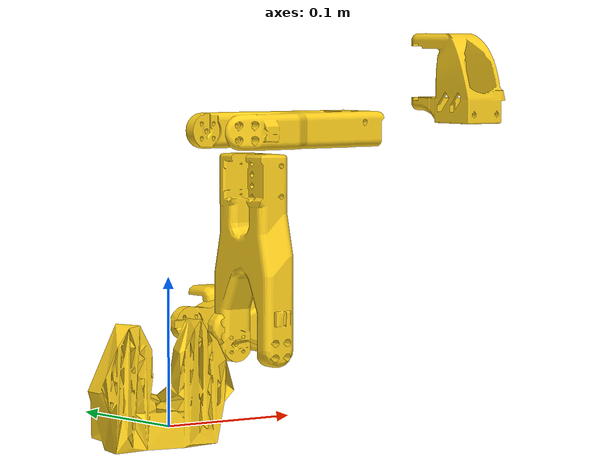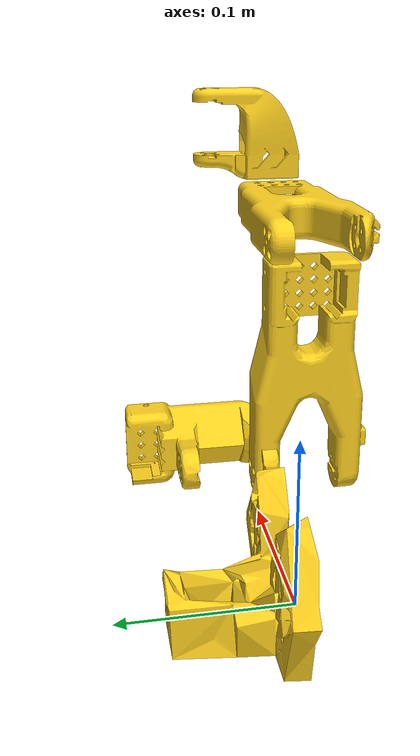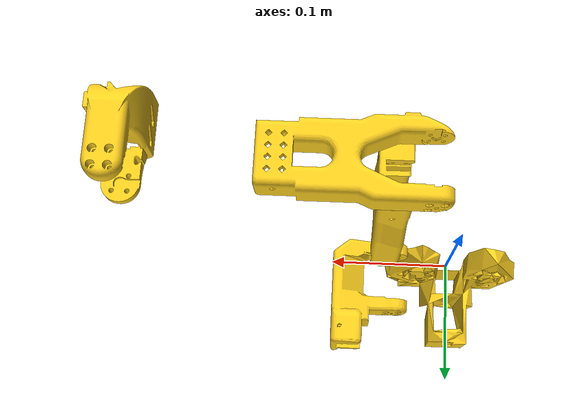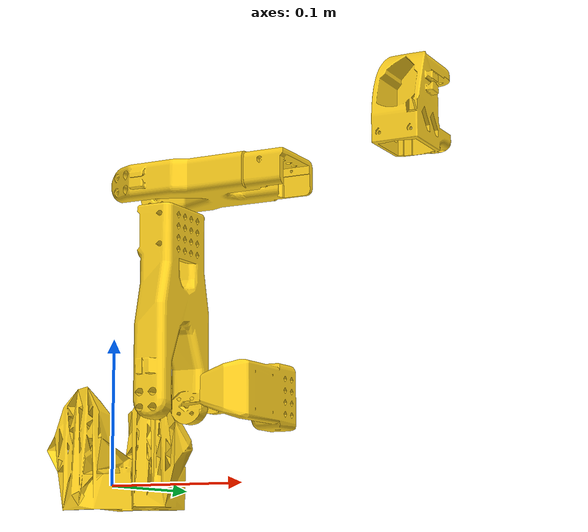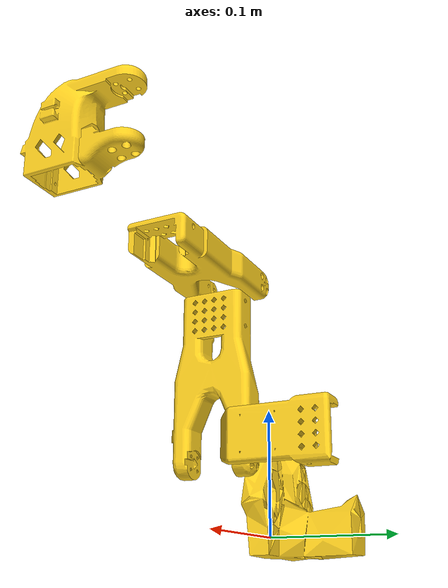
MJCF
<mujoco model="so_arm101">
  <compiler angle="radian"/>
  <default>
    <default class="so101_servo">
      <joint damping="0.60" frictionloss="0.052" armature="0.028"/>
      <position kp="300" kv="2.0" forcerange="-3.35 3.35"/>
    </default>
  </default>
  <asset>
    <mesh name="base_so101_v2" file="assets/base_so101_v2.stl"/>
    <mesh name="rotation_pitch_so101_v1" file="assets/rotation_pitch_so101_v1.stl"/>
    <mesh name="upper_arm_so101_v1" file="assets/upper_arm_so101_v1.stl"/>
    <mesh name="under_arm_so101_v1" file="assets/under_arm_so101_v1.stl"/>
    <mesh name="wrist_roll_pitch_so101_v2" file="assets/wrist_roll_pitch_so101_v2.stl"/>
  </asset>
  <worldbody>
    <geom type="mesh" rgba="1.0 0.82 0.12 1" mesh="base_so101_v2"/>
    <body name="shoulder" pos="0.0388353 0 0.0624" quat="0 0 -1 0">
      <inertial pos="-0.0307604 -1.66727e-05 -0.0252713" mass="0.100006" diaginertia="8.3759e-05 8.10403e-05 2.39783e-05"/>
      <joint name="shoulder_pan" pos="0 0 0" axis="0 0 1" range="-1.91986 1.91986" actuatorfrcrange="-35 35"/>
      <geom type="mesh" rgba="1.0 0.82 0.12 1" mesh="rotation_pitch_so101_v1"/>
      <body name="upper_arm" pos="-0.0303992 -0.0182778 -0.0542" quat="0.5 -0.5 -0.5 -0.5">
        <inertial pos="-0.0898471 -0.00838224 0.0184089" mass="0.103" diaginertia="4.08002e-05 0.000147318 0.000142487"/>
        <joint name="shoulder_lift" pos="0 0 0" axis="0 0 1" range="-1.74533 1.74533" actuatorfrcrange="-35 35"/>
        <geom type="mesh" rgba="1.0 0.82 0.12 1" mesh="upper_arm_so101_v1"/>
        <body name="lower_arm" pos="-0.11257 -0.028 0" quat="0.707107 0 0 0.707107">
          <inertial pos="-0.0980701 0.00324376 0.0182831" mass="0.104" diaginertia="2.87438e-05 0.000159844 0.00014529"/>
          <joint name="elbow_flex" pos="0 0 0" axis="0 0 1" range="-1.69 1.69" actuatorfrcrange="-35 35"/>
          <geom type="mesh" rgba="1.0 0.82 0.12 1" mesh="under_arm_so101_v1"/>
          <body name="wrist" pos="-0.1349 0.0052 0" quat="0.707107 0 0 -0.707107">
            <inertial pos="-0.000103312 -0.0386143 0.0281156" mass="0.079" diaginertia="3.68263e-05 2.5391e-05 2.1e-05"/>
            <joint name="wrist_flex" pos="0 0 0" axis="0 0 1" range="-1.65806 1.65806" actuatorfrcrange="-35 35"/>
            <geom type="mesh" rgba="1.0 0.82 0.12 1" mesh="wrist_roll_pitch_so101_v2"/>
            <body name="gripper" pos="0 -0.0611 0.0181" quat="0.0172091 -0.0172091 0.706897 0.706897">
              <inertial pos="0.000213627 0.000245138 -0.025187" mass="0.087" diaginertia="2.75087e-05 4.33657e-05 3.45059e-05"/>
              <joint name="wrist_roll" pos="0 0 0" axis="0 0 1" range="-2.74385 2.84121" actuatorfrcrange="-35 35"/>
              <body name="jaw" pos="0.0202 0.0188 -0.0234" quat="0.707107 0.707107 0 0">
                <inertial pos="-0.00157495 -0.0300244 0.0192755" mass="0.012" diaginertia="6.61427e-06 1.89032e-06 5.28738e-06"/>
                <joint name="gripper" pos="0 0 0" axis="0 0 1" range="-0.17453 1.74533" actuatorfrcrange="-35 35"/>
              </body>
            </body>
          </body>
        </body>
      </body>
    </body>
  </worldbody>
  <actuator>
    <position class="so101_servo" name="shoulder_pan" joint="shoulder_pan" ctrlrange="-1.91986 1.91986"/>
    <position class="so101_servo" name="shoulder_lift" joint="shoulder_lift" ctrlrange="-1.74533 1.74533"/>
    <position class="so101_servo" name="elbow_flex" joint="elbow_flex" ctrlrange="-1.69 1.69"/>
    <position class="so101_servo" name="wrist_flex" joint="wrist_flex" ctrlrange="-1.65806 1.65806"/>
    <position class="so101_servo" name="wrist_roll" joint="wrist_roll" ctrlrange="-2.74385 2.84121"/>
    <position class="so101_servo" name="gripper" joint="gripper" ctrlrange="-0.17453 1.74533"/>
  </actuator>
</mujoco>
